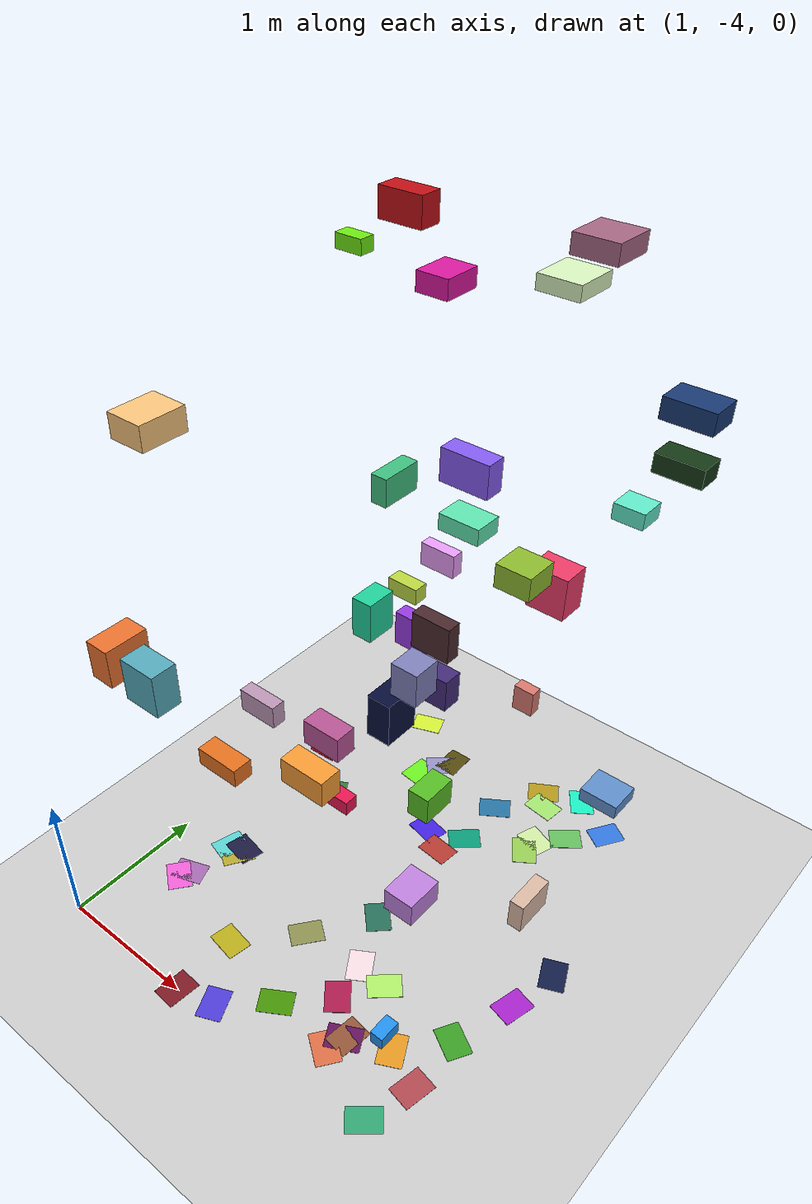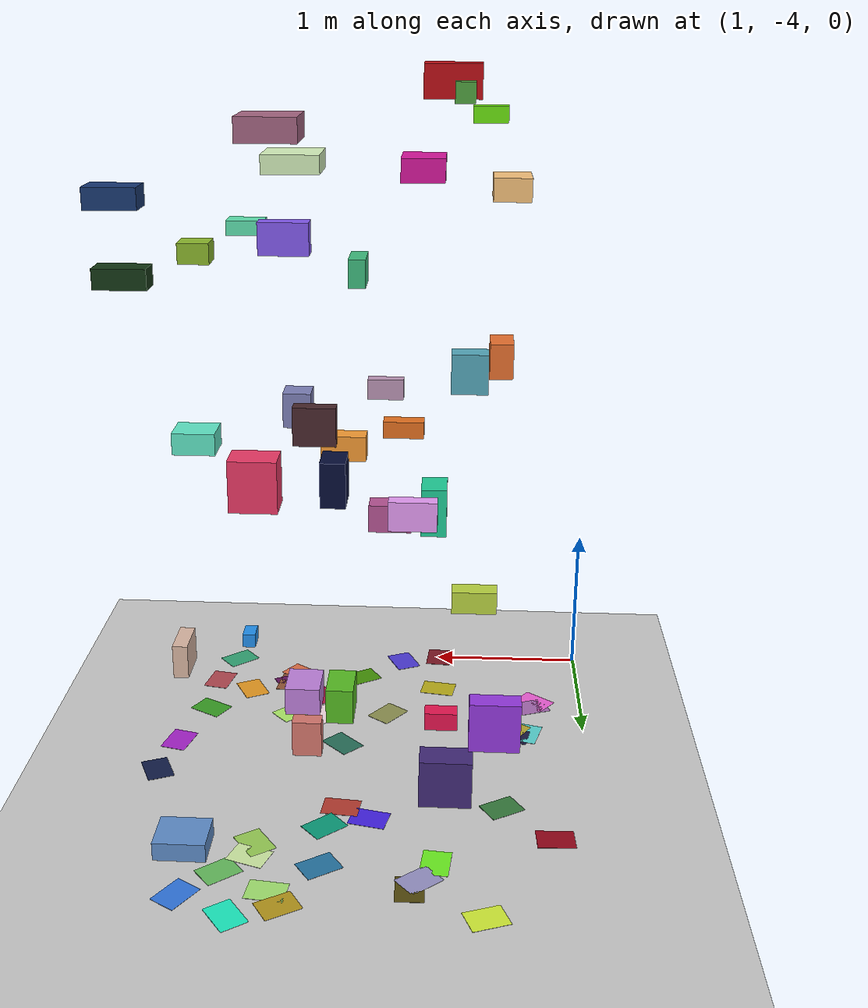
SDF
<sdf version="1.9">
 <world name="default">
  <model name="ground_plane">
   <static>true</static>
   <link name="link">
    <collision name="collision">
     <geometry><plane><normal>0 0 1</normal><size>1 1</size></plane></geometry>
    </collision>
    <visual name="visual">
     <geometry><plane><normal>0 0 1</normal><size>500 500</size></plane></geometry>
     <material>
      <ambient>0.8 0.8 0.8 1</ambient>
      <diffuse>0.8 0.8 0.8 1</diffuse>
      <specular>0.8 0.8 0.8 1</specular>
     </material>
    </visual>
    <inertial>
     <mass>1</mass>
     <inertia><ixx>1</ixx><ixy>0</ixy><ixz>0</ixz><iyy>1</iyy><iyz>0</iyz><izz>1</izz></inertia>
    </inertial>
   </link>
  </model>
  <model name="vio_landmark_0">
   <static>true</static>
   <pose>2.883960752465865 -2.398883981098808 3.415892847276589 0 0 0</pose>
   <link name="landmark">
    <visual name="box">
     <geometry><box><size>0.2854551272121483 0.1146645320237129 0.183773177470464</size></box></geometry>
     <material>
      <ambient>0.5190008863394231 0.3557407926058648 0.9425507541737584 1</ambient>
      <diffuse>0.5190008863394231 0.3557407926058648 0.9425507541737584 1</diffuse>
     </material>
    </visual>
    <collision name="box">
     <geometry><box><size>0.2854551272121483 0.1146645320237129 0.183773177470464</size></box></geometry>
    </collision>
   </link>
  </model>
  <model name="vio_landmark_1">
   <static>true</static>
   <pose>1.6065001493494049 -3.2806104333279245 3.5788436829515393 0 0 0</pose>
   <link name="landmark">
    <visual name="box">
     <geometry><box><size>0.22992059972801737 0.2879040632947595 0.14072837899368398</size></box></geometry>
     <material>
      <ambient>0.9746683778310289 0.766756594326243 0.4835083309597002 1</ambient>
      <diffuse>0.9746683778310289 0.766756594326243 0.4835083309597002 1</diffuse>
     </material>
    </visual>
    <collision name="box">
     <geometry><box><size>0.22992059972801737 0.2879040632947595 0.14072837899368398</size></box></geometry>
    </collision>
   </link>
  </model>
  <model name="vio_landmark_2">
   <static>true</static>
   <pose>3.455719108832152 -2.7670247094404106 3.2649518301126204 0 0 0</pose>
   <link name="landmark">
    <visual name="box">
     <geometry><box><size>0.1867459988612678 0.17755478912481476 0.12318790556142727</size></box></geometry>
     <material>
      <ambient>0.5551473678337145 0.7276756127744071 0.17949294916846642 1</ambient>
      <diffuse>0.5551473678337145 0.7276756127744071 0.17949294916846642 1</diffuse>
     </material>
    </visual>
    <collision name="box">
     <geometry><box><size>0.1867459988612678 0.17755478912481476 0.12318790556142727</size></box></geometry>
    </collision>
   </link>
  </model>
  <model name="vio_landmark_3">
   <static>true</static>
   <pose>2.868233853962077 -2.760270285934086 2.331067229333974 0 0 0</pose>
   <link name="landmark">
    <visual name="box">
     <geometry><box><size>0.16964004412591938 0.17639464523545179 0.2129603202536578</size></box></geometry>
     <material>
      <ambient>0.49674604368839154 0.5074091669308279 0.7291232282729553 1</ambient>
      <diffuse>0.49674604368839154 0.5074091669308279 0.7291232282729553 1</diffuse>
     </material>
    </visual>
    <collision name="box">
     <geometry><box><size>0.16964004412591938 0.17639464523545179 0.2129603202536578</size></box></geometry>
    </collision>
   </link>
  </model>
  <model name="vio_landmark_5">
   <static>true</static>
   <pose>2.5655163002827477 -2.1302571789952127 0.6940226325859234 0 0 0</pose>
   <link name="landmark">
    <visual name="box">
     <geometry><box><size>0.16398394088934767 0.26316400302224513 0.21960958207863956</size></box></geometry>
     <material>
      <ambient>0.34280452518226756 0.7431413213892027 0.14052768893675927 1</ambient>
      <diffuse>0.34280452518226756 0.7431413213892027 0.14052768893675927 1</diffuse>
     </material>
    </visual>
    <collision name="box">
     <geometry><box><size>0.16398394088934767 0.26316400302224513 0.21960958207863956</size></box></geometry>
    </collision>
   </link>
  </model>
  <model name="vio_landmark_12">
   <static>true</static>
   <pose>3.3433090692998917 -3.5353685107975394 0.36670338280310777 0 0 0</pose>
   <link name="landmark">
    <visual name="box">
     <geometry><box><size>0.0882362566795525 0.15051563867776657 0.09664206308490392</size></box></geometry>
     <material>
      <ambient>0.1360085484491816 0.5733551056465095 0.9391314822204991 1</ambient>
      <diffuse>0.1360085484491816 0.5733551056465095 0.9391314822204991 1</diffuse>
     </material>
    </visual>
    <collision name="box">
     <geometry><box><size>0.0882362566795525 0.15051563867776657 0.09664206308490392</size></box></geometry>
    </collision>
   </link>
  </model>
  <model name="vio_landmark_13">
   <static>true</static>
   <pose>1.7922581044192545 -1.4591674180041854 1.6891364674877303 0 0 0</pose>
   <link name="landmark">
    <visual name="box">
     <geometry><box><size>0.23742928113420192 0.11169157660073355 0.1214898257154296</size></box></geometry>
     <material>
      <ambient>0.7357871695374243 0.8413585583137587 0.25734239671452236 1</ambient>
      <diffuse>0.7357871695374243 0.8413585583137587 0.25734239671452236 1</diffuse>
     </material>
    </visual>
    <collision name="box">
     <geometry><box><size>0.23742928113420192 0.11169157660073355 0.1214898257154296</size></box></geometry>
    </collision>
   </link>
  </model>
  <model name="vio_landmark_15">
   <static>true</static>
   <pose>1.6686675019416788 -1.1933128886108362 1.0917690519276546 0 0 0</pose>
   <link name="landmark">
    <visual name="box">
     <geometry><box><size>0.27260999090365057 0.11719085642033614 0.27999460248276176</size></box></geometry>
     <material>
      <ambient>0.5905552186566452 0.22741931633808862 0.8846626611994229 1</ambient>
      <diffuse>0.5905552186566452 0.22741931633808862 0.8846626611994229 1</diffuse>
     </material>
    </visual>
    <collision name="box">
     <geometry><box><size>0.27260999090365057 0.11719085642033614 0.27999460248276176</size></box></geometry>
    </collision>
   </link>
  </model>
  <model name="vio_landmark_20">
   <static>true</static>
   <pose>2.776450804702038 -1.1576185242057568 4.128676272060334 0 0 0</pose>
   <link name="landmark">
    <visual name="box">
     <geometry><box><size>0.28411552386644945 0.2796867345342205 0.11422375261183286</size></box></geometry>
     <material>
      <ambient>0.6484775878681597 0.3988129480129028 0.5122667804522053 1</ambient>
      <diffuse>0.6484775878681597 0.3988129480129028 0.5122667804522053 1</diffuse>
     </material>
    </visual>
    <collision name="box">
     <geometry><box><size>0.28411552386644945 0.2796867345342205 0.11422375261183286</size></box></geometry>
    </collision>
   </link>
  </model>
  <model name="vio_landmark_21">
   <static>true</static>
   <pose>2.646152716358541 -2.6670864903873572 1.8979881515754289 0 0 0</pose>
   <link name="landmark">
    <visual name="box">
     <geometry><box><size>0.1575332111188796 0.2316310048317442 0.29001850303779925</size></box></geometry>
     <material>
      <ambient>0.023693284254084082 0.05326215587623086 0.2214931132507736 1</ambient>
      <diffuse>0.023693284254084082 0.05326215587623086 0.2214931132507736 1</diffuse>
     </material>
    </visual>
    <collision name="box">
     <geometry><box><size>0.1575332111188796 0.2316310048317442 0.29001850303779925</size></box></geometry>
    </collision>
   </link>
  </model>
  <model name="vio_landmark_22">
   <static>true</static>
   <pose>1.7742117491465512 -1.9661599173210038 4.11804520616837 0 0 0</pose>
   <link name="landmark">
    <visual name="box">
     <geometry><box><size>0.1760609730212634 0.09923535760517639 0.08168586797380814</size></box></geometry>
     <material>
      <ambient>0.425019241870172 0.9046893154555513 0.06534044359848316 1</ambient>
      <diffuse>0.425019241870172 0.9046893154555513 0.06534044359848316 1</diffuse>
     </material>
    </visual>
    <collision name="box">
     <geometry><box><size>0.1760609730212634 0.09923535760517639 0.08168586797380814</size></box></geometry>
    </collision>
   </link>
  </model>
  <model name="vio_landmark_23">
   <static>true</static>
   <pose>2.0945070976613733 -1.5989851241448614 3.902961998998895 0 0 0</pose>
   <link name="landmark">
    <visual name="box">
     <geometry><box><size>0.21299322674508608 0.2522575490054554 0.11544180803143023</size></box></geometry>
     <material>
      <ambient>0.8516107928890668 0.0929621113641495 0.6207367041251235 1</ambient>
      <diffuse>0.8516107928890668 0.0929621113641495 0.6207367041251235 1</diffuse>
     </material>
    </visual>
    <collision name="box">
     <geometry><box><size>0.21299322674508608 0.2522575490054554 0.11544180803143023</size></box></geometry>
    </collision>
   </link>
  </model>
  <model name="vio_landmark_24">
   <static>true</static>
   <pose>1.9207528882558809 -1.220904117003058 0.7310745343400868 0 0 0</pose>
   <link name="landmark">
    <visual name="box">
     <geometry><box><size>0.2856631018558845 0.16451694984774778 0.2757736827679083</size></box></geometry>
     <material>
      <ambient>0.25924574648721527 0.16761696033957985 0.4740808149218148 1</ambient>
      <diffuse>0.25924574648721527 0.16761696033957985 0.4740808149218148 1</diffuse>
     </material>
    </visual>
    <collision name="box">
     <geometry><box><size>0.2856631018558845 0.16451694984774778 0.2757736827679083</size></box></geometry>
    </collision>
   </link>
  </model>
  <model name="vio_landmark_27">
   <static>true</static>
   <pose>3.3415622964277008 -1.0532175372263635 0.38534498997257305 0 0 0</pose>
   <link name="landmark">
    <visual name="box">
     <geometry><box><size>0.29099176845585945 0.25306464287313474 0.1083848125770703</size></box></geometry>
     <material>
      <ambient>0.3733841566507981 0.5613049851706075 0.7979303456207818 1</ambient>
      <diffuse>0.3733841566507981 0.5613049851706075 0.7979303456207818 1</diffuse>
     </material>
    </visual>
    <collision name="box">
     <geometry><box><size>0.29099176845585945 0.25306464287313474 0.1083848125770703</size></box></geometry>
    </collision>
   </link>
  </model>
  <model name="vio_landmark_28">
   <static>true</static>
   <pose>1.622028758499842 -3.6925226845905548 2.4139252099112696 0 0 0</pose>
   <link name="landmark">
    <visual name="box">
     <geometry><box><size>0.15458756127414958 0.27146441147918354 0.23658871762577827</size></box></geometry>
     <material>
      <ambient>0.9191726105978868 0.4460796202429246 0.18284062905611229 1</ambient>
      <diffuse>0.9191726105978868 0.4460796202429246 0.18284062905611229 1</diffuse>
     </material>
    </visual>
    <collision name="box">
     <geometry><box><size>0.15458756127414958 0.27146441147918354 0.23658871762577827</size></box></geometry>
    </collision>
   </link>
  </model>
  <model name="vio_landmark_31">
   <static>true</static>
   <pose>3.1519286986754405 -2.7821909976295607 3.412002333725255 0 0 0</pose>
   <link name="landmark">
    <visual name="box">
     <geometry><box><size>0.21864916567244547 0.14979173375073818 0.08415772125267268</size></box></geometry>
     <material>
      <ambient>0.3727175686072458 0.8940510195109341 0.6901335877324134 1</ambient>
      <diffuse>0.3727175686072458 0.8940510195109341 0.6901335877324134 1</diffuse>
     </material>
    </visual>
    <collision name="box">
     <geometry><box><size>0.21864916567244547 0.14979173375073818 0.08415772125267268</size></box></geometry>
    </collision>
   </link>
  </model>
  <model name="vio_landmark_33">
   <static>true</static>
   <pose>3.6592969928354395 -1.7469652233615378 3.7291722373378677 0 0 0</pose>
   <link name="landmark">
    <visual name="box">
     <geometry><box><size>0.2777173449157926 0.18345914339906683 0.11340417444757941</size></box></geometry>
     <material>
      <ambient>0.09830767955856473 0.22236426139199034 0.45137744095409366 1</ambient>
      <diffuse>0.09830767955856473 0.22236426139199034 0.45137744095409366 1</diffuse>
     </material>
    </visual>
    <collision name="box">
     <geometry><box><size>0.2777173449157926 0.18345914339906683 0.11340417444757941</size></box></geometry>
    </collision>
   </link>
  </model>
  <model name="vio_landmark_34">
   <static>true</static>
   <pose>2.690408164039823 -1.3159075342506728 3.962985431813897 0 0 0</pose>
   <link name="landmark">
    <visual name="box">
     <geometry><box><size>0.27206839542711747 0.2870324738900792 0.08844157279734256</size></box></geometry>
     <material>
      <ambient>0.8437627864425692 0.952348265922017 0.7423811668536975 1</ambient>
      <diffuse>0.8437627864425692 0.952348265922017 0.7423811668536975 1</diffuse>
     </material>
    </visual>
    <collision name="box">
     <geometry><box><size>0.27206839542711747 0.2870324738900792 0.08844157279734256</size></box></geometry>
    </collision>
   </link>
  </model>
  <model name="vio_landmark_38">
   <static>true</static>
   <pose>2.73028299519376 -2.4021749206276715 2.3322011174208725 0 0 0</pose>
   <link name="landmark">
    <visual name="box">
     <geometry><box><size>0.2540906536223526 0.09477085856601164 0.23308724330352532</size></box></geometry>
     <material>
      <ambient>0.28670065116640325 0.15881679975891663 0.17701029027640625 1</ambient>
      <diffuse>0.28670065116640325 0.15881679975891663 0.17701029027640625 1</diffuse>
     </material>
    </visual>
    <collision name="box">
     <geometry><box><size>0.2540906536223526 0.09477085856601164 0.23308724330352532</size></box></geometry>
    </collision>
   </link>
  </model>
  <model name="vio_landmark_39">
   <static>true</static>
   <pose>1.8266420103170424 -3.671089487633759 2.3152812813456474 0 0 0</pose>
   <link name="landmark">
    <visual name="box">
     <geometry><box><size>0.24625116228890942 0.16393391468151097 0.2712546814024063</size></box></geometry>
     <material>
      <ambient>0.3326206798704602 0.6657432317804727 0.7377403558354723 1</ambient>
      <diffuse>0.3326206798704602 0.6657432317804727 0.7377403558354723 1</diffuse>
     </material>
    </visual>
    <collision name="box">
     <geometry><box><size>0.24625116228890942 0.16393391468151097 0.2712546814024063</size></box></geometry>
    </collision>
   </link>
  </model>
  <model name="vio_landmark_47">
   <static>true</static>
   <pose>2.8561783674094805 -2.6804010109093057 0.4098873698202126 0 0 0</pose>
   <link name="landmark">
    <visual name="box">
     <geometry><box><size>0.2246234560645196 0.2777139718510729 0.18314996228449595</size></box></geometry>
     <material>
      <ambient>0.7533380362924954 0.5079814437993357 0.8699226038365555 1</ambient>
      <diffuse>0.7533380362924954 0.5079814437993357 0.8699226038365555 1</diffuse>
     </material>
    </visual>
    <collision name="box">
     <geometry><box><size>0.2246234560645196 0.2777139718510729 0.18314996228449595</size></box></geometry>
    </collision>
   </link>
  </model>
  <model name="vio_landmark_49">
   <static>true</static>
   <pose>2.125543205320237 -1.5456810323824595 2.1289489214717934 0 0 0</pose>
   <link name="landmark">
    <visual name="box">
     <geometry><box><size>0.2585568610604255 0.08543614001059822 0.16331026783280495</size></box></geometry>
     <material>
      <ambient>0.9089159241196327 0.6149216140682712 0.9707239017812027 1</ambient>
      <diffuse>0.9089159241196327 0.6149216140682712 0.9707239017812027 1</diffuse>
     </material>
    </visual>
    <collision name="box">
     <geometry><box><size>0.2585568610604255 0.08543614001059822 0.16331026783280495</size></box></geometry>
    </collision>
   </link>
  </model>
  <model name="vio_landmark_50">
   <static>true</static>
   <pose>1.9594897740121262 -2.360312246993865 0.43417693628379084 0 0 0</pose>
   <link name="landmark">
    <visual name="box">
     <geometry><box><size>0.205522014406887 0.11044004350501635 0.11558522560876491</size></box></geometry>
     <material>
      <ambient>0.9140273779964664 0.0834182668715841 0.31824419676012455 1</ambient>
      <diffuse>0.9140273779964664 0.0834182668715841 0.31824419676012455 1</diffuse>
     </material>
    </visual>
    <collision name="box">
     <geometry><box><size>0.205522014406887 0.11044004350501635 0.11558522560876491</size></box></geometry>
    </collision>
   </link>
  </model>
  <model name="vio_landmark_53">
   <static>true</static>
   <pose>1.962904865669756 -1.7670244263673853 4.290424225538406 0 0 0</pose>
   <link name="landmark">
    <visual name="box">
     <geometry><box><size>0.28151696388803493 0.14286077171769057 0.1645641239238044</size></box></geometry>
     <material>
      <ambient>0.7499493759945784 0.05948805846249876 0.08602824754681851 1</ambient>
      <diffuse>0.7499493759945784 0.05948805846249876 0.08602824754681851 1</diffuse>
     </material>
    </visual>
    <collision name="box">
     <geometry><box><size>0.28151696388803493 0.14286077171769057 0.1645641239238044</size></box></geometry>
    </collision>
   </link>
  </model>
  <model name="vio_landmark_54">
   <static>true</static>
   <pose>3.595566161650896 -2.492152809164666 0.7707707514908478 0 0 0</pose>
   <link name="landmark">
    <visual name="box">
     <geometry><box><size>0.09446161561619121 0.26943663569933035 0.21886913810059433</size></box></geometry>
     <material>
      <ambient>0.8625404388163548 0.7261790205104988 0.6472899505003941 1</ambient>
      <diffuse>0.8625404388163548 0.7261790205104988 0.6472899505003941 1</diffuse>
     </material>
    </visual>
    <collision name="box">
     <geometry><box><size>0.09446161561619121 0.26943663569933035 0.21886913810059433</size></box></geometry>
    </collision>
   </link>
  </model>
  <model name="vio_landmark_57">
   <static>true</static>
   <pose>3.1608061317539082 -1.0839830961524086 2.6791697960843948 0 0 0</pose>
   <link name="landmark">
    <visual name="box">
     <geometry><box><size>0.20904704959423626 0.18154946043107947 0.10715077410842885</size></box></geometry>
     <material>
      <ambient>0.3783695252787728 0.914443704034946 0.7860739633659901 1</ambient>
      <diffuse>0.3783695252787728 0.914443704034946 0.7860739633659901 1</diffuse>
     </material>
    </visual>
    <collision name="box">
     <geometry><box><size>0.20904704959423626 0.18154946043107947 0.10715077410842885</size></box></geometry>
    </collision>
   </link>
  </model>
  <model name="vio_landmark_60">
   <static>true</static>
   <pose>1.9030433450160713 -1.5712095783760187 4.250808700075264 0 0 0</pose>
   <link name="landmark">
    <visual name="box">
     <geometry><box><size>0.09792270397498826 0.08494403937303653 0.09952847547812443</size></box></geometry>
     <material>
      <ambient>0.31932650457819706 0.6398263940659431 0.25162556218731136 1</ambient>
      <diffuse>0.31932650457819706 0.6398263940659431 0.25162556218731136 1</diffuse>
     </material>
    </visual>
    <collision name="box">
     <geometry><box><size>0.09792270397498826 0.08494403937303653 0.09952847547812443</size></box></geometry>
    </collision>
   </link>
  </model>
  <model name="vio_landmark_61">
   <static>true</static>
   <pose>3.601277432686228 -1.5952371253607094 3.354861074725945 0 0 0</pose>
   <link name="landmark">
    <visual name="box">
     <geometry><box><size>0.2771467830926288 0.15261977367046714 0.10761601195233653</size></box></geometry>
     <material>
      <ambient>0.08369908210062295 0.22119269017069076 0.08604213637308135 1</ambient>
      <diffuse>0.08369908210062295 0.22119269017069076 0.08604213637308135 1</diffuse>
     </material>
    </visual>
    <collision name="box">
     <geometry><box><size>0.2771467830926288 0.15261977367046714 0.10761601195233653</size></box></geometry>
    </collision>
   </link>
  </model>
  <model name="vio_landmark_64">
   <static>true</static>
   <pose>2.023280060719712 -2.097992556014784 1.9593545113900996 0 0 0</pose>
   <link name="landmark">
    <visual name="box">
     <geometry><box><size>0.14414994933575753 0.21536474734651923 0.2796610821316422</size></box></geometry>
     <material>
      <ambient>0.12519229448676913 0.8133403554144997 0.6012705807634909 1</ambient>
      <diffuse>0.12519229448676913 0.8133403554144997 0.6012705807634909 1</diffuse>
     </material>
    </visual>
    <collision name="box">
     <geometry><box><size>0.14414994933575753 0.21536474734651923 0.2796610821316422</size></box></geometry>
    </collision>
   </link>
  </model>
  <model name="vio_landmark_66">
   <static>true</static>
   <pose>2.6611701389668054 -1.1757909687709907 0.9923565862279915 0 0 0</pose>
   <link name="landmark">
    <visual name="box">
     <geometry><box><size>0.155923491867002 0.0886345086819718 0.19860082262990364</size></box></geometry>
     <material>
      <ambient>0.8467239840851088 0.47194200310543505 0.43243835142166603 1</ambient>
      <diffuse>0.8467239840851088 0.47194200310543505 0.43243835142166603 1</diffuse>
     </material>
    </visual>
    <collision name="box">
     <geometry><box><size>0.155923491867002 0.0886345086819718 0.19860082262990364</size></box></geometry>
    </collision>
   </link>
  </model>
  <model name="vio_landmark_69">
   <static>true</static>
   <pose>2.3063743567675137 -2.828899806351543 1.6105513578747197 0 0 0</pose>
   <link name="landmark">
    <visual name="box">
     <geometry><box><size>0.26890194943759493 0.1484060435406261 0.1777275312830348</size></box></geometry>
     <material>
      <ambient>0.7198271668282512 0.33206149171244287 0.5870659521320732 1</ambient>
      <diffuse>0.7198271668282512 0.33206149171244287 0.5870659521320732 1</diffuse>
     </material>
    </visual>
    <collision name="box">
     <geometry><box><size>0.26890194943759493 0.1484060435406261 0.1777275312830348</size></box></geometry>
    </collision>
   </link>
  </model>
  <model name="vio_landmark_70">
   <static>true</static>
   <pose>2.4786158206523803 -2.4753714286340385 3.229075027155094 0 0 0</pose>
   <link name="landmark">
    <visual name="box">
     <geometry><box><size>0.0973116960631561 0.24783881988939932 0.1600661738575017</size></box></geometry>
     <material>
      <ambient>0.24884603859209994 0.7436078870129629 0.5011349686664474 1</ambient>
      <diffuse>0.24884603859209994 0.7436078870129629 0.5011349686664474 1</diffuse>
     </material>
    </visual>
    <collision name="box">
     <geometry><box><size>0.0973116960631561 0.24783881988939932 0.1600661738575017</size></box></geometry>
    </collision>
   </link>
  </model>
  <model name="vio_landmark_72">
   <static>true</static>
   <pose>2.9567804431422955 -1.5388306740884143 2.2938040533207413 0 0 0</pose>
   <link name="landmark">
    <visual name="box">
     <geometry><box><size>0.25946585647090414 0.19047456740402266 0.28472155402393395</size></box></geometry>
     <material>
      <ambient>0.928092711020933 0.22745218001971085 0.4057121158340322 1</ambient>
      <diffuse>0.928092711020933 0.22745218001971085 0.4057121158340322 1</diffuse>
     </material>
    </visual>
    <collision name="box">
     <geometry><box><size>0.25946585647090414 0.19047456740402266 0.28472155402393395</size></box></geometry>
    </collision>
   </link>
  </model>
  <model name="vio_landmark_84">
   <static>true</static>
   <pose>2.6404420574467298 -3.3370319477077732 1.890838979814253 0 0 0</pose>
   <link name="landmark">
    <visual name="box">
     <geometry><box><size>0.2953080025806551 0.14328093505544054 0.1688042563351786</size></box></geometry>
     <material>
      <ambient>0.9672191707631768 0.6125363885626733 0.20473669105561176 1</ambient>
      <diffuse>0.9672191707631768 0.6125363885626733 0.20473669105561176 1</diffuse>
     </material>
    </visual>
    <collision name="box">
     <geometry><box><size>0.2953080025806551 0.14328093505544054 0.1688042563351786</size></box></geometry>
    </collision>
   </link>
  </model>
  <model name="vio_landmark_85">
   <static>true</static>
   <pose>2.3701657664033533 -3.38993321360734 2.2749690421094906 0 0 0</pose>
   <link name="landmark">
    <visual name="box">
     <geometry><box><size>0.2311802326850581 0.08137455667131092 0.13348807297610693</size></box></geometry>
     <material>
      <ambient>0.7381298685715648 0.5901340534736637 0.7176125846340605 1</ambient>
      <diffuse>0.7381298685715648 0.5901340534736637 0.7176125846340605 1</diffuse>
     </material>
    </visual>
    <collision name="box">
     <geometry><box><size>0.2311802326850581 0.08137455667131092 0.13348807297610693</size></box></geometry>
    </collision>
   </link>
  </model>
  <model name="vio_landmark_89">
   <static>true</static>
   <pose>2.259703125341939 -3.5918926838815235 1.9409068737090218 0 0 0</pose>
   <link name="landmark">
    <visual name="box">
     <geometry><box><size>0.2715128995144574 0.12247014248113294 0.11288282528300275</size></box></geometry>
     <material>
      <ambient>0.9026212391583187 0.446828765468337 0.12589686778191087 1</ambient>
      <diffuse>0.9026212391583187 0.446828765468337 0.12589686778191087 1</diffuse>
     </material>
    </visual>
    <collision name="box">
     <geometry><box><size>0.2715128995144574 0.12247014248113294 0.11288282528300275</size></box></geometry>
    </collision>
   </link>
  </model>
  <model name="vio_floor_patch_3">
   <static>true</static>
   <pose>1.5698973348570318 -2.0359775348107547 .002 0 0 2.1243972284562145</pose>
   <link name="patch">
    <visual name="patch">
     <geometry><box><size>.17 .23 .002</size></box></geometry>
     <material>
      <ambient>0.21435830174302808 0.4833987170507081 0.23859891047927298 1</ambient>
      <diffuse>0.21435830174302808 0.4833987170507081 0.23859891047927298 1</diffuse>
     </material>
    </visual>
   </link>
  </model>
  <model name="vio_floor_patch_4">
   <static>true</static>
   <pose>1.6776450697237413 -0.9763134565890379 .002 0 0 1.936718019473592</pose>
   <link name="patch">
    <visual name="patch">
     <geometry><box><size>.17 .23 .002</size></box></geometry>
     <material>
      <ambient>0.832305343959097 0.9462069593847546 0.21605355861085943 1</ambient>
      <diffuse>0.832305343959097 0.9462069593847546 0.21605355861085943 1</diffuse>
     </material>
    </visual>
   </link>
  </model>
  <model name="vio_floor_patch_5">
   <static>true</static>
   <pose>3.5743675392897405 -3.543211638965496 .002 0 0 2.9490716555950187</pose>
   <link name="patch">
    <visual name="patch">
     <geometry><box><size>.17 .23 .002</size></box></geometry>
     <material>
      <ambient>0.6980415181317382 0.28606497742491893 0.31933914309153927 1</ambient>
      <diffuse>0.6980415181317382 0.28606497742491893 0.31933914309153927 1</diffuse>
     </material>
    </visual>
   </link>
  </model>
  <model name="vio_floor_patch_13">
   <static>true</static>
   <pose>2.0562710063420404 -1.2866384013562913 .002 0 0 2.282577185717408</pose>
   <link name="patch">
    <visual name="patch">
     <geometry><box><size>.17 .23 .002</size></box></geometry>
     <material>
      <ambient>0.5940003169571011 0.5782753849905014 0.7803824296505486 1</ambient>
      <diffuse>0.5940003169571011 0.5782753849905014 0.7803824296505486 1</diffuse>
     </material>
    </visual>
   </link>
  </model>
  <model name="vio_floor_patch_17">
   <static>true</static>
   <pose>3.2044616729229762 -1.295647791515691 .002 0 0 2.2567273433268524</pose>
   <link name="patch">
    <visual name="patch">
     <geometry><box><size>.17 .23 .002</size></box></geometry>
     <material>
      <ambient>0.402143362755711 0.7463066731470184 0.3716629402671546 1</ambient>
      <diffuse>0.402143362755711 0.7463066731470184 0.3716629402671546 1</diffuse>
     </material>
    </visual>
   </link>
  </model>
  <model name="vio_floor_patch_18">
   <static>true</static>
   <pose>3.4841889627599203 -3.881179102168759 .002 0 0 2.270212073458334</pose>
   <link name="patch">
    <visual name="patch">
     <geometry><box><size>.17 .23 .002</size></box></geometry>
     <material>
      <ambient>0.2024674681853013 0.651506824829978 0.460887117663246 1</ambient>
      <diffuse>0.2024674681853013 0.651506824829978 0.460887117663246 1</diffuse>
     </material>
    </visual>
   </link>
  </model>
  <model name="vio_floor_patch_20">
   <static>true</static>
   <pose>2.1052843211630714 -1.201251658785564 .002 0 0 0.021758351513096574</pose>
   <link name="patch">
    <visual name="patch">
     <geometry><box><size>.17 .23 .002</size></box></geometry>
     <material>
      <ambient>0.33053214887956867 0.2908731554492757 0.05407311642920831 1</ambient>
      <diffuse>0.33053214887956867 0.2908731554492757 0.05407311642920831 1</diffuse>
     </material>
    </visual>
   </link>
  </model>
  <model name="vio_floor_patch_23">
   <static>true</static>
   <pose>1.3131210990551583 -3.364276428985228 .002 0 0 -2.2252242015932997</pose>
   <link name="patch">
    <visual name="patch">
     <geometry><box><size>.17 .23 .002</size></box></geometry>
     <material>
      <ambient>0.9455081432671893 0.378422689642638 0.8503439775628597 1</ambient>
      <diffuse>0.9455081432671893 0.378422689642638 0.8503439775628597 1</diffuse>
     </material>
    </visual>
   </link>
  </model>
  <model name="vio_floor_patch_32">
   <static>true</static>
   <pose>2.5591814902077585 -1.9812951463426831 .002 0 0 -1.6619883637350121</pose>
   <link name="patch">
    <visual name="patch">
     <geometry><box><size>.17 .23 .002</size></box></geometry>
     <material>
      <ambient>0.7136695470242022 0.23271633321555166 0.19134872050157126 1</ambient>
      <diffuse>0.7136695470242022 0.23271633321555166 0.19134872050157126 1</diffuse>
     </material>
    </visual>
   </link>
  </model>
  <model name="vio_floor_patch_33">
   <static>true</static>
   <pose>2.3320558782920147 -3.1370907323315604 .002 0 0 2.4934446853145977</pose>
   <link name="patch">
    <visual name="patch">
     <geometry><box><size>.17 .23 .002</size></box></geometry>
     <material>
      <ambient>0.5576708670145675 0.5753563293619375 0.3224038545016251 1</ambient>
      <diffuse>0.5576708670145675 0.5753563293619375 0.3224038545016251 1</diffuse>
     </material>
    </visual>
   </link>
  </model>
  <model name="vio_floor_patch_35">
   <static>true</static>
   <pose>2.5476465283671246 -3.651528713713507 .002 0 0 2.134336045356053</pose>
   <link name="patch">
    <visual name="patch">
     <geometry><box><size>.17 .23 .002</size></box></geometry>
     <material>
      <ambient>0.27193600839776044 0.57926256903865 0.029022746860436432 1</ambient>
      <diffuse>0.27193600839776044 0.57926256903865 0.029022746860436432 1</diffuse>
     </material>
    </visual>
   </link>
  </model>
  <model name="vio_floor_patch_37">
   <static>true</static>
   <pose>3.049176076530202 -1.4528233291403785 .002 0 0 1.2406002328947934</pose>
   <link name="patch">
    <visual name="patch">
     <geometry><box><size>.17 .23 .002</size></box></geometry>
     <material>
      <ambient>0.8207033127203546 0.9315624615723593 0.6513008812144984 1</ambient>
      <diffuse>0.8207033127203546 0.9315624615723593 0.6513008812144984 1</diffuse>
     </material>
    </visual>
   </link>
  </model>
  <model name="vio_floor_patch_44">
   <static>true</static>
   <pose>1.258397767409093 -1.7289628038092273 .002 0 0 -1.5257381938976635</pose>
   <link name="patch">
    <visual name="patch">
     <geometry><box><size>.17 .23 .002</size></box></geometry>
     <material>
      <ambient>0.5831442175169528 0.02621524415449244 0.10279884732481967 1</ambient>
      <diffuse>0.5831442175169528 0.02621524415449244 0.10279884732481967 1</diffuse>
     </material>
    </visual>
   </link>
  </model>
  <model name="vio_floor_patch_45">
   <static>true</static>
   <pose>1.3417316358472362 -3.28749330355745 .002 0 0 1.9302595290180098</pose>
   <link name="patch">
    <visual name="patch">
     <geometry><box><size>.17 .23 .002</size></box></geometry>
     <material>
      <ambient>0.6563619628843688 0.4198509820645128 0.701490981785887 1</ambient>
      <diffuse>0.6563619628843688 0.4198509820645128 0.701490981785887 1</diffuse>
     </material>
    </visual>
   </link>
  </model>
  <model name="vio_floor_patch_49">
   <static>true</static>
   <pose>3.043714595825188 -3.560015999632914 .002 0 0 -1.0792276001021195</pose>
   <link name="patch">
    <visual name="patch">
     <geometry><box><size>.17 .23 .002</size></box></geometry>
     <material>
      <ambient>0.3914987139153653 0.07301667113468294 0.36735937966035453 1</ambient>
      <diffuse>0.3914987139153653 0.07301667113468294 0.36735937966035453 1</diffuse>
     </material>
    </visual>
   </link>
  </model>
  <model name="vio_floor_patch_54">
   <static>true</static>
   <pose>3.4097289980815653 -1.071013974811243 .002 0 0 2.5803620080156473</pose>
   <link name="patch">
    <visual name="patch">
     <geometry><box><size>.17 .23 .002</size></box></geometry>
     <material>
      <ambient>0.19754899258917002 0.47080747116068383 0.8864481312492677 1</ambient>
      <diffuse>0.19754899258917002 0.47080747116068383 0.8864481312492677 1</diffuse>
     </material>
    </visual>
   </link>
  </model>
  <model name="vio_floor_patch_57">
   <static>true</static>
   <pose>3.055425074778758 -3.5356208618429132 .002 0 0 -0.11729704100076699</pose>
   <link name="patch">
    <visual name="patch">
     <geometry><box><size>.17 .23 .002</size></box></geometry>
     <material>
      <ambient>0.582447977453722 0.34339346679977995 0.2225382500177625 1</ambient>
      <diffuse>0.582447977453722 0.34339346679977995 0.2225382500177625 1</diffuse>
     </material>
    </visual>
   </link>
  </model>
  <model name="vio_floor_patch_59">
   <static>true</static>
   <pose>3.78039228320222 -2.3337991355625043 .002 0 0 -2.7245802669991264</pose>
   <link name="patch">
    <visual name="patch">
     <geometry><box><size>.17 .23 .002</size></box></geometry>
     <material>
      <ambient>0.06844371271158707 0.11624375643243727 0.28397979922416927 1</ambient>
      <diffuse>0.06844371271158707 0.11624375643243727 0.28397979922416927 1</diffuse>
     </material>
    </visual>
   </link>
  </model>
  <model name="vio_floor_patch_65">
   <static>true</static>
   <pose>3.3214611776100647 -3.427233850471758 .002 0 0 -2.6645271709658123</pose>
   <link name="patch">
    <visual name="patch">
     <geometry><box><size>.17 .23 .002</size></box></geometry>
     <material>
      <ambient>0.9098656066364136 0.6031343296611311 0.13167019861440368 1</ambient>
      <diffuse>0.9098656066364136 0.6031343296611311 0.13167019861440368 1</diffuse>
     </material>
    </visual>
   </link>
  </model>
  <model name="vio_floor_patch_81">
   <static>true</static>
   <pose>2.906800599108208 -1.1331572649194825 .002 0 0 -1.684046126320093</pose>
   <link name="patch">
    <visual name="patch">
     <geometry><box><size>.17 .23 .002</size></box></geometry>
     <material>
      <ambient>0.6447424226496955 0.9016608005370487 0.4459930891584258 1</ambient>
      <diffuse>0.6447424226496955 0.9016608005370487 0.4459930891584258 1</diffuse>
     </material>
    </visual>
   </link>
  </model>
  <model name="vio_floor_patch_84">
   <static>true</static>
   <pose>1.9941550322256305 -3.995987324837774 .002 0 0 -0.07639086707898413</pose>
   <link name="patch">
    <visual name="patch">
     <geometry><box><size>.17 .23 .002</size></box></geometry>
     <material>
      <ambient>0.4930963429987626 0.1025548403881324 0.14928301516981135 1</ambient>
      <diffuse>0.4930963429987626 0.1025548403881324 0.14928301516981135 1</diffuse>
     </material>
    </visual>
   </link>
  </model>
  <model name="vio_floor_patch_89">
   <static>true</static>
   <pose>2.613816186586761 -2.7235391811787677 .002 0 0 -2.3574747564890868</pose>
   <link name="patch">
    <visual name="patch">
     <geometry><box><size>.17 .23 .002</size></box></geometry>
     <material>
      <ambient>0.15791364436584338 0.4404276184927695 0.3526071144299843 1</ambient>
      <diffuse>0.15791364436584338 0.4404276184927695 0.3526071144299843 1</diffuse>
     </material>
    </visual>
   </link>
  </model>
  <model name="vio_floor_patch_91">
   <static>true</static>
   <pose>1.965661426098886 -1.451049977701718 .002 0 0 3.0450963436687295</pose>
   <link name="patch">
    <visual name="patch">
     <geometry><box><size>.17 .23 .002</size></box></geometry>
     <material>
      <ambient>0.4283210357896612 0.9523087360329456 0.13025919977368644 1</ambient>
      <diffuse>0.4283210357896612 0.9523087360329456 0.13025919977368644 1</diffuse>
     </material>
    </visual>
   </link>
  </model>
  <model name="vio_floor_patch_93">
   <static>true</static>
   <pose>2.825785722834305 -1.008185438342628 .002 0 0 2.1234352384743063</pose>
   <link name="patch">
    <visual name="patch">
     <geometry><box><size>.17 .23 .002</size></box></geometry>
     <material>
      <ambient>0.7130521607026542 0.5967278002056252 0.11175854754528768 1</ambient>
      <diffuse>0.7130521607026542 0.5967278002056252 0.11175854754528768 1</diffuse>
     </material>
    </visual>
   </link>
  </model>
  <model name="vio_floor_patch_103">
   <static>true</static>
   <pose>2.9967887112496534 -3.1115208231553053 .002 0 0 2.314778597004525</pose>
   <link name="patch">
    <visual name="patch">
     <geometry><box><size>.17 .23 .002</size></box></geometry>
     <material>
      <ambient>0.6942117980282444 0.9410930791024544 0.41748709774323356 1</ambient>
      <diffuse>0.6942117980282444 0.9410930791024544 0.41748709774323356 1</diffuse>
     </material>
    </visual>
   </link>
  </model>
  <model name="vio_floor_patch_108">
   <static>true</static>
   <pose>2.820353854343356 -3.3674730273712807 .002 0 0 0.693472785729969</pose>
   <link name="patch">
    <visual name="patch">
     <geometry><box><size>.17 .23 .002</size></box></geometry>
     <material>
      <ambient>0.6814426048175161 0.10559765873089966 0.30577000500162516 1</ambient>
      <diffuse>0.6814426048175161 0.10559765873089966 0.30577000500162516 1</diffuse>
     </material>
    </visual>
   </link>
  </model>
  <model name="vio_floor_patch_112">
   <static>true</static>
   <pose>2.6353458231624804 -1.3805384107909626 .002 0 0 2.163813023264439</pose>
   <link name="patch">
    <visual name="patch">
     <geometry><box><size>.17 .23 .002</size></box></geometry>
     <material>
      <ambient>0.15130037383565592 0.45757315118725234 0.6419076600270438 1</ambient>
      <diffuse>0.15130037383565592 0.45757315118725234 0.6419076600270438 1</diffuse>
     </material>
    </visual>
   </link>
  </model>
  <model name="vio_floor_patch_117">
   <static>true</static>
   <pose>3.00021235611728 -3.6854096066763615 .002 0 0 -2.1911976235460333</pose>
   <link name="patch">
    <visual name="patch">
     <geometry><box><size>.17 .23 .002</size></box></geometry>
     <material>
      <ambient>0.8748784696868193 0.43473507654003596 0.28022254261560936 1</ambient>
      <diffuse>0.8748784696868193 0.43473507654003596 0.28022254261560936 1</diffuse>
     </material>
    </visual>
   </link>
  </model>
  <model name="vio_floor_patch_120">
   <static>true</static>
   <pose>2.2569850266429343 -3.9170649293029065 .002 0 0 -2.7169516251063026</pose>
   <link name="patch">
    <visual name="patch">
     <geometry><box><size>.17 .23 .002</size></box></geometry>
     <material>
      <ambient>0.30663145090531246 0.23700962189969396 0.8456700708094741 1</ambient>
      <diffuse>0.30663145090531246 0.23700962189969396 0.8456700708094741 1</diffuse>
     </material>
    </visual>
   </link>
  </model>
  <model name="vio_floor_patch_129">
   <static>true</static>
   <pose>1.488139997049099 -2.8920202530105215 .002 0 0 -1.7674893888566157</pose>
   <link name="patch">
    <visual name="patch">
     <geometry><box><size>.17 .23 .002</size></box></geometry>
     <material>
      <ambient>0.10922619392147652 0.10431982429765452 0.25922193042848896 1</ambient>
      <diffuse>0.10922619392147652 0.10431982429765452 0.25922193042848896 1</diffuse>
     </material>
    </visual>
   </link>
  </model>
  <model name="vio_floor_patch_137">
   <static>true</static>
   <pose>3.5715614277862056 -3.1394638183246606 .002 0 0 -2.0898776560911188</pose>
   <link name="patch">
    <visual name="patch">
     <geometry><box><size>.17 .23 .002</size></box></geometry>
     <material>
      <ambient>0.22652892154906068 0.6244678873305567 0.14671363372658383 1</ambient>
      <diffuse>0.22652892154906068 0.6244678873305567 0.14671363372658383 1</diffuse>
     </material>
    </visual>
   </link>
  </model>
  <model name="vio_floor_patch_139">
   <static>true</static>
   <pose>1.9910305131658508 -3.5161269468518874 .002 0 0 1.4100563471043377</pose>
   <link name="patch">
    <visual name="patch">
     <geometry><box><size>.17 .23 .002</size></box></geometry>
     <material>
      <ambient>0.7331374319724347 0.6866148949038384 0.10599678312333598 1</ambient>
      <diffuse>0.7331374319724347 0.6866148949038384 0.10599678312333598 1</diffuse>
     </material>
    </visual>
   </link>
  </model>
  <model name="vio_floor_patch_146">
   <static>true</static>
   <pose>1.4829268999271583 -2.9575081058190618 .002 0 0 -0.5624883220999379</pose>
   <link name="patch">
    <visual name="patch">
     <geometry><box><size>.17 .23 .002</size></box></geometry>
     <material>
      <ambient>0.7198055086643047 0.659731563882608 0.18786735203555707 1</ambient>
      <diffuse>0.7198055086643047 0.659731563882608 0.18786735203555707 1</diffuse>
     </material>
    </visual>
   </link>
  </model>
  <model name="vio_floor_patch_147">
   <static>true</static>
   <pose>3.709037909990191 -2.6973187588777003 .002 0 0 2.8949184572337283</pose>
   <link name="patch">
    <visual name="patch">
     <geometry><box><size>.17 .23 .002</size></box></geometry>
     <material>
      <ambient>0.6600296472485617 0.14025106904261025 0.801258989801166 1</ambient>
      <diffuse>0.6600296472485617 0.14025106904261025 0.801258989801166 1</diffuse>
     </material>
    </visual>
   </link>
  </model>
  <model name="vio_floor_patch_148">
   <static>true</static>
   <pose>1.3853747224323458 -2.9316868679115187 .002 0 0 -0.27233396626524</pose>
   <link name="patch">
    <visual name="patch">
     <geometry><box><size>.17 .23 .002</size></box></geometry>
     <material>
      <ambient>0.350635608983361 0.8356390762667103 0.8243409619215812 1</ambient>
      <diffuse>0.350635608983361 0.8356390762667103 0.8243409619215812 1</diffuse>
     </material>
    </visual>
   </link>
  </model>
  <model name="vio_floor_patch_149">
   <static>true</static>
   <pose>2.3792011711107657 -1.8714151128973446 .002 0 0 1.3604522570816138</pose>
   <link name="patch">
    <visual name="patch">
     <geometry><box><size>.17 .23 .002</size></box></geometry>
     <material>
      <ambient>0.2696524025101886 0.13425473559998435 0.898422445642674 1</ambient>
      <diffuse>0.2696524025101886 0.13425473559998435 0.898422445642674 1</diffuse>
     </material>
    </visual>
   </link>
  </model>
  <model name="vio_floor_patch_153">
   <static>true</static>
   <pose>2.7779412371849936 -3.096514912112376 .002 0 0 -2.574843182470822</pose>
   <link name="patch">
    <visual name="patch">
     <geometry><box><size>.17 .23 .002</size></box></geometry>
     <material>
      <ambient>0.9675359690428117 0.8755102049786653 0.9025084567373326 1</ambient>
      <diffuse>0.9675359690428117 0.8755102049786653 0.9025084567373326 1</diffuse>
     </material>
    </visual>
   </link>
  </model>
  <model name="vio_floor_patch_156">
   <static>true</static>
   <pose>3.1006413556847923 -0.9067713840013472 .002 0 0 -2.515605344406787</pose>
   <link name="patch">
    <visual name="patch">
     <geometry><box><size>.17 .23 .002</size></box></geometry>
     <material>
      <ambient>0.10311683374350547 0.9406022999296182 0.7660918255124822 1</ambient>
      <diffuse>0.10311683374350547 0.9406022999296182 0.7660918255124822 1</diffuse>
     </material>
    </visual>
   </link>
  </model>
  <model name="vio_floor_patch_157">
   <static>true</static>
   <pose>3.03734106153376 -1.580759966526136 .002 0 0 0.6127559539574037</pose>
   <link name="patch">
    <visual name="patch">
     <geometry><box><size>.17 .23 .002</size></box></geometry>
     <material>
      <ambient>0.5981966836227682 0.8086226705001192 0.33604224230980234 1</ambient>
      <diffuse>0.5981966836227682 0.8086226705001192 0.33604224230980234 1</diffuse>
     </material>
    </visual>
   </link>
  </model>
  <model name="vio_floor_patch_159">
   <static>true</static>
   <pose>2.641783595682436 -1.7743630006987932 .002 0 0 -0.8463783977844379</pose>
   <link name="patch">
    <visual name="patch">
     <geometry><box><size>.17 .23 .002</size></box></geometry>
     <material>
      <ambient>0.04102797357648761 0.612372451627952 0.4778171749888496 1</ambient>
      <diffuse>0.04102797357648761 0.612372451627952 0.4778171749888496 1</diffuse>
     </material>
    </visual>
   </link>
  </model>
 </world>
</sdf>
